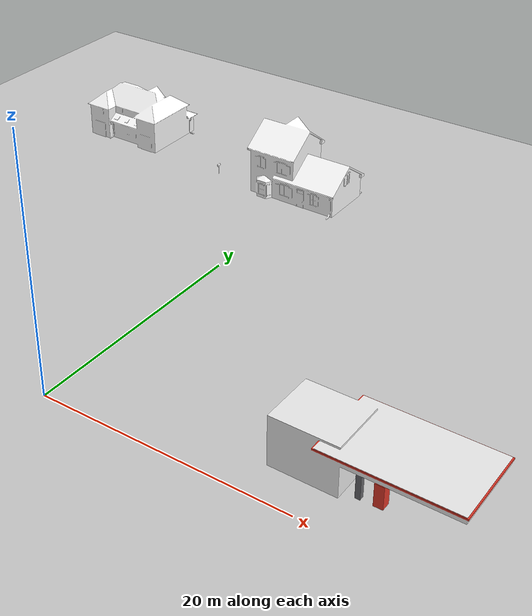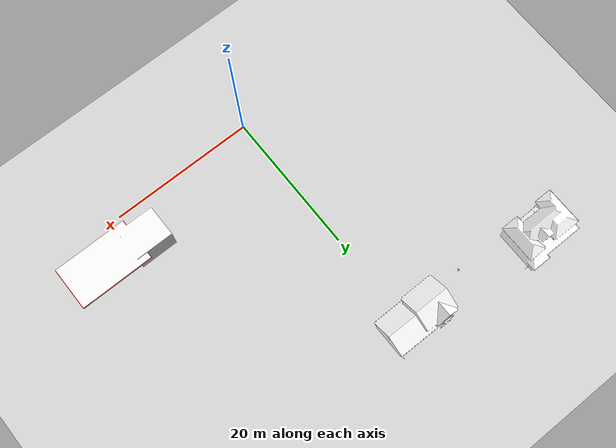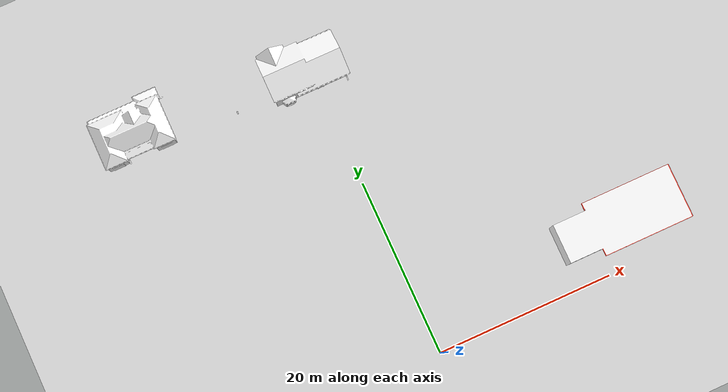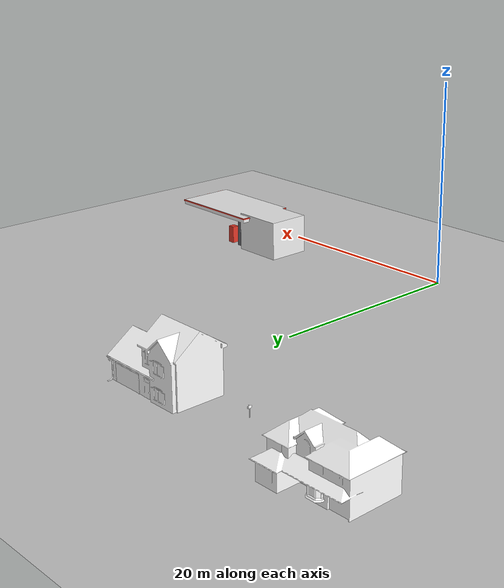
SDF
<sdf version="1.6">
 <world name="default">
  <scene>
   <sky><clouds><speed>12</speed></clouds></sky>
   <ambient>0.4 0.4 0.4 1</ambient>
   <background>0.7 0.7 0.7 1</background>
   <shadows>1</shadows>
  </scene>
  <light name="sun" type="directional">
   <pose>0 0 10 0 -0 0</pose>
   <diffuse>0.8 0.8 0.8 1</diffuse>
   <specular>0.2 0.2 0.2 1</specular>
   <attenuation>
    <range>1000</range>
    <constant>0.9</constant>
    <linear>0.01</linear>
    <quadratic>0.001</quadratic>
   </attenuation>
   <direction>-0.5 0.1 -0.9</direction>
  </light>
  <model name="ground_plane">
   <static>1</static>
   <link name="link">
    <collision name="collision">
     <geometry><plane><normal>0 0 1</normal><size>100 100</size></plane></geometry>
     <surface><friction><ode><mu>100</mu><mu2>50</mu2></ode></friction></surface>
    </collision>
    <visual name="visual">
     <cast_shadows>0</cast_shadows>
     <geometry><plane><normal>0 0 1</normal><size>100 100</size></plane></geometry>
     <material>
      <script><uri>file://media/materials/scripts/gazebo.material</uri><name>Gazebo/Grey</name></script>
     </material>
    </visual>
    <velocity_decay><linear>0</linear><angular>0</angular></velocity_decay>
   </link>
  </model>
  <light name="sun" type="directional">
   <pose>0 0 10 0 -0 0</pose>
   <diffuse>0.8 0.8 0.8 1</diffuse>
   <specular>0.2 0.2 0.2 1</specular>
   <attenuation>
    <range>1000</range>
    <constant>0.9</constant>
    <linear>0.01</linear>
    <quadratic>0.001</quadratic>
   </attenuation>
   <direction>-0.5 0.1 -0.9</direction>
  </light>
  <physics name="default_physics" default="0" type="ode">
   <max_step_size>0.01</max_step_size>
   <real_time_factor>1</real_time_factor>
   <real_time_update_rate>100</real_time_update_rate>
   <ode>
    <solver>
     <type>quick</type>
     <iters>5000</iters>
     <sor>1.3</sor>
     <use_dynamic_moi_rescaling>0</use_dynamic_moi_rescaling>
    </solver>
    <constraints>
     <cfm>0</cfm>
     <erp>0.1</erp>
     <contact_max_correcting_vel>100</contact_max_correcting_vel>
     <contact_surface_layer>0.001</contact_surface_layer>
    </constraints>
   </ode>
  </physics>
  <scene><ambient>0.4 0.4 0.4 1</ambient><background>0.7 0.7 0.7 1</background><shadows>1</shadows></scene>
  <spherical_coordinates>
   <surface_model>EARTH_WGS84</surface_model>
   <latitude_deg>0</latitude_deg>
   <longitude_deg>0</longitude_deg>
   <elevation>0</elevation>
   <heading_deg>0</heading_deg>
  </spherical_coordinates>
  <gravity>0 0 -9.81</gravity>
  <magnetic_field>6e-06 2.3e-05 -4.2e-05</magnetic_field>
  <atmosphere type="adiabatic"/>
  <model name="Gas Station">
   <static>1</static>
   <link name="link">
    <collision name="collision">
     <geometry><mesh><uri>model://gas_station/meshes/gas_station.dae</uri></mesh></geometry>
    </collision>
    <visual name="visual">
     <geometry><mesh><uri>model://gas_station/meshes/gas_station.dae</uri></mesh></geometry>
     <material>
      <script>
       <uri>model://gas_station/materials/scripts</uri>
       <uri>model://gas_station/materials/textures</uri>
       <name>GasStation/Diffuse</name>
      </script>
      <shader type="normal_map_object_space"><normal_map>GasStation_Normal.png</normal_map></shader>
     </material>
    </visual>
   </link>
   <pose>22.6169 5.04471 0 0 -0 0</pose>
  </model>
  <model name="House 2">
   <static>1</static>
   <link name="link">
    <collision name="collision">
     <geometry><mesh><uri>model://house_2/meshes/house_2.dae</uri></mesh></geometry>
    </collision>
    <visual name="visual">
     <geometry><mesh><uri>model://house_2/meshes/house_2.dae</uri></mesh></geometry>
     <material>
      <script>
       <uri>model://house_2/materials/scripts</uri>
       <uri>model://house_2/materials/textures</uri>
       <uri>model://house_1/materials/textures</uri>
       <name>House_2/Diffuse</name>
      </script>
      <shader type="normal_map_object_space">
       <normal_map>model://house_1/materials/textures/House_1_Normal.png</normal_map>
      </shader>
     </material>
    </visual>
   </link>
   <pose>-20.9727 34.9723 0 0 -0 0</pose>
  </model>
  <model name="House 3">
   <static>1</static>
   <link name="link">
    <collision name="collision">
     <geometry><mesh><uri>model://house_3/meshes/house_3.dae</uri></mesh></geometry>
    </collision>
    <visual name="visual">
     <geometry><mesh><uri>model://house_3/meshes/house_3.dae</uri></mesh></geometry>
     <material>
      <script>
       <uri>model://house_3/materials/scripts</uri>
       <uri>model://house_3/materials/textures</uri>
       <uri>model://house_1/materials/textures</uri>
       <name>House_3/Diffuse</name>
      </script>
      <shader type="normal_map_object_space">
       <normal_map>model://house_1/materials/textures/House_1_Normal.png</normal_map>
      </shader>
     </material>
    </visual>
   </link>
   <pose>-0.424023 33.9197 0 0 -0 0</pose>
  </model>
  <model name="Mailbox">
   <link name="link">
    <collision name="collision">
     <geometry><mesh><uri>model://mailbox/meshes/mailbox.dae</uri></mesh></geometry>
    </collision>
    <visual name="visual">
     <geometry><mesh><uri>model://mailbox/meshes/mailbox.dae</uri></mesh></geometry>
     <material>
      <script>
       <uri>model://mailbox/materials/scripts</uri>
       <uri>model://mailbox/materials/textures</uri>
       <name>Mailbox/Diffuse</name>
      </script>
     </material>
    </visual>
    <inertial>
     <inertia><ixx>1</ixx><ixy>0</ixy><ixz>0</ixz><iyy>1</iyy><iyz>0</iyz><izz>1</izz></inertia>
     <mass>1</mass>
    </inertial>
   </link>
   <pose>-9.18163 32.5862 -1e-06 1.9e-05 1.9e-05 -0</pose>
  </model>
 </world>
</sdf>
